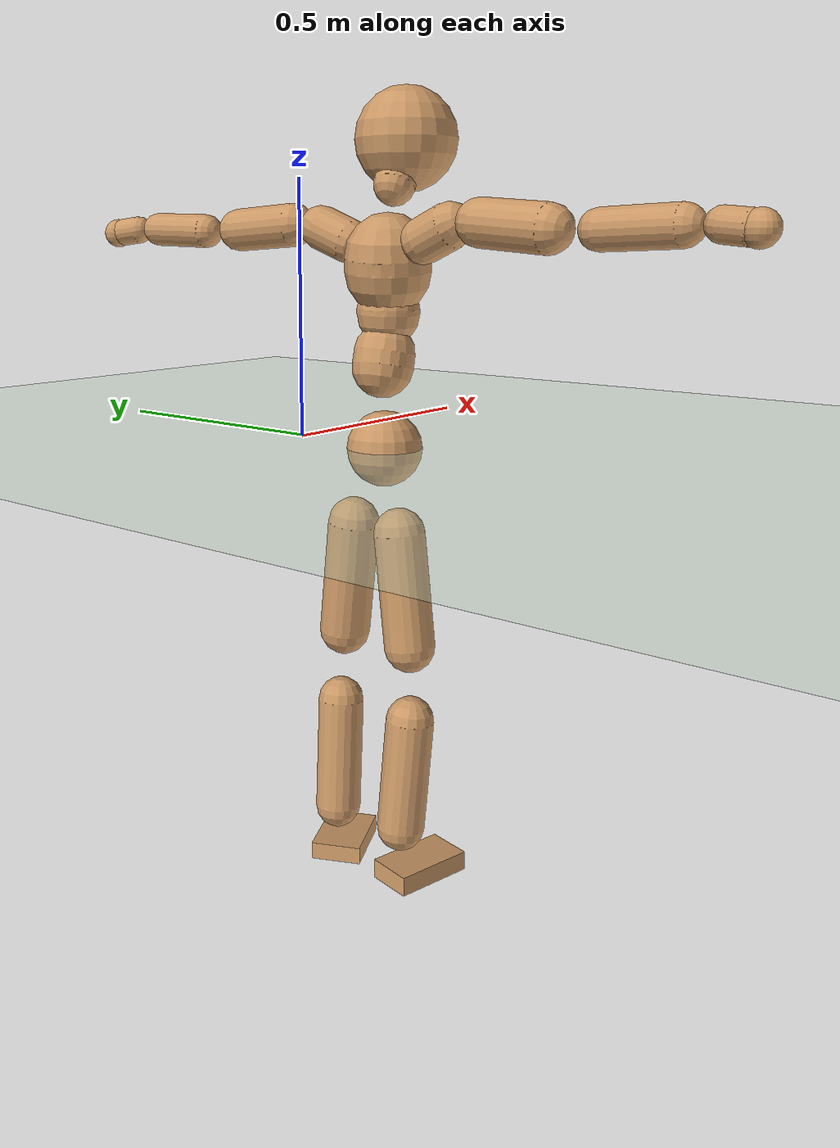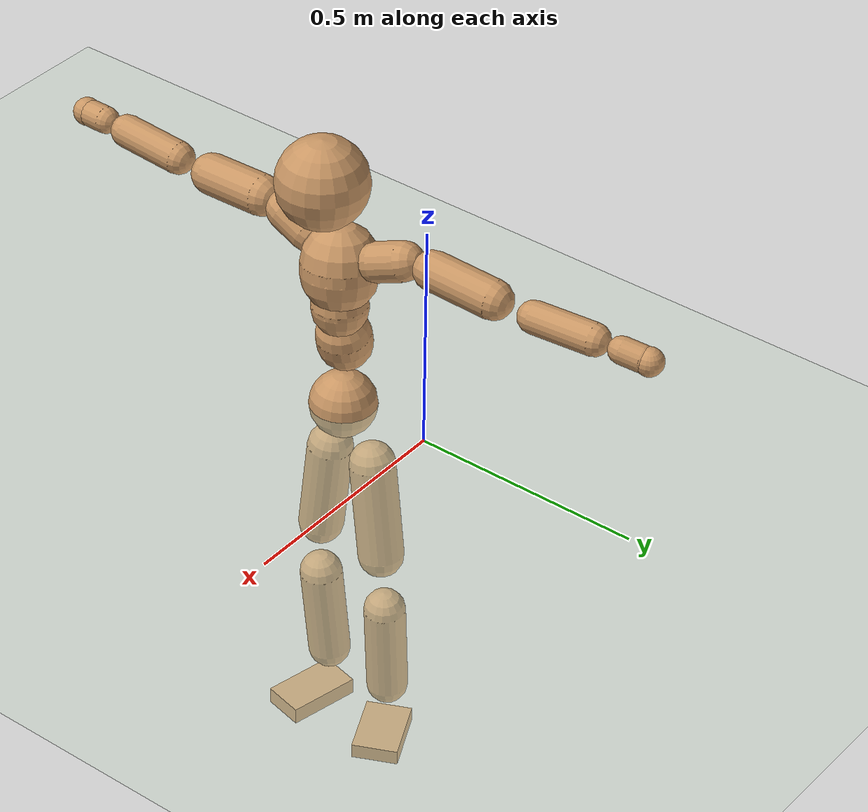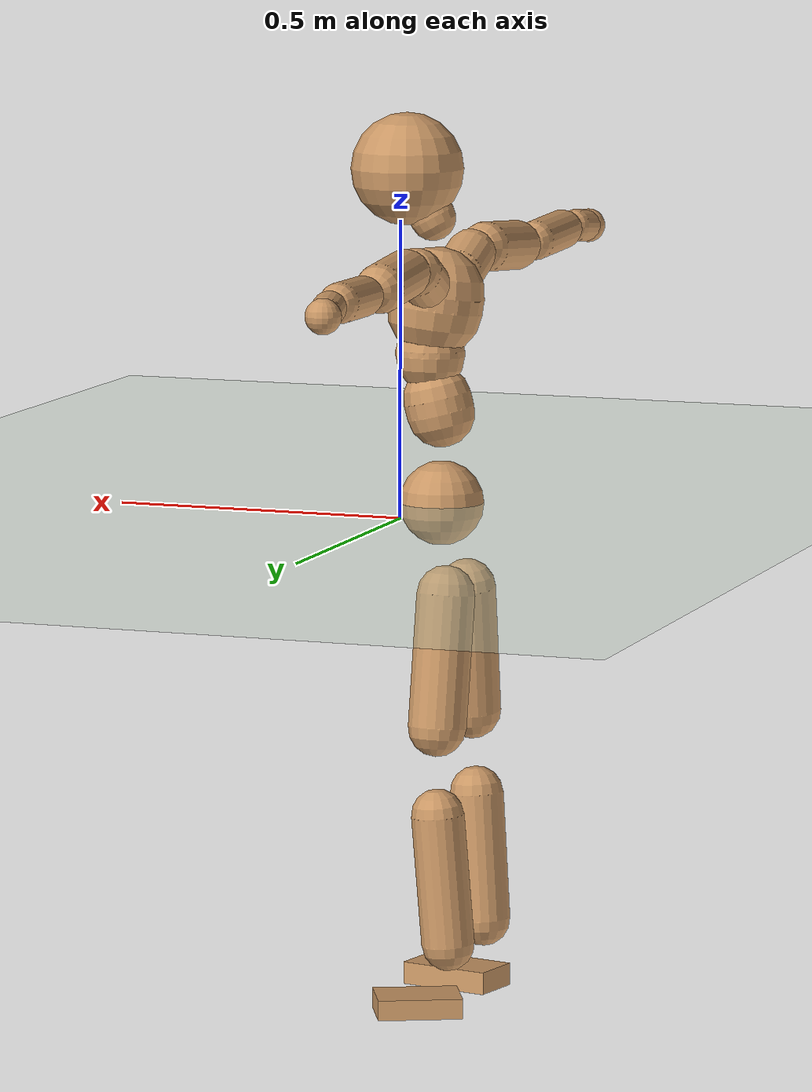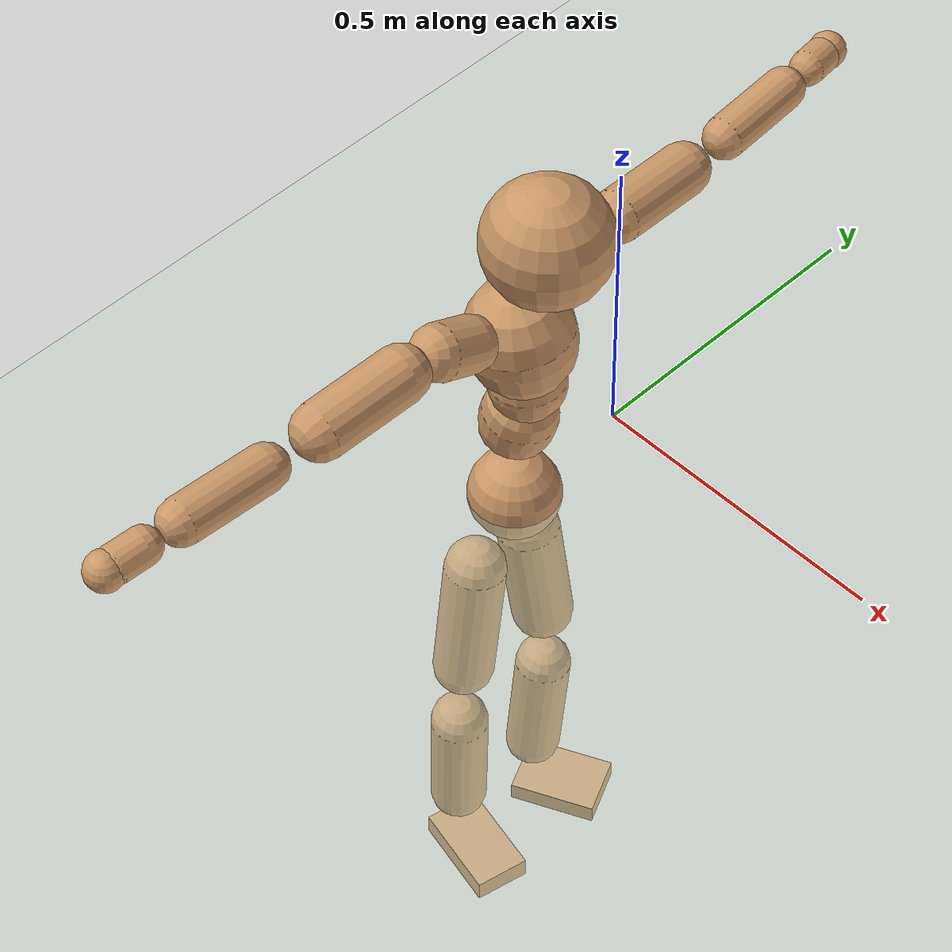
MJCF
<mujoco model="humanoid">
  <compiler coordinate="local" angle="radian"/>
  <default>
    <joint damping="0.0" armature="0.01" stiffness="0.0" limited="true"/>
    <geom conaffinity="1" condim="3" contype="7" margin="0.001" rgba="0.8 0.6 .4 1"/>
  </default>
  <asset>
    <texture type="skybox" builtin="gradient" rgb1=".4 .5 .6" rgb2="0 0 0" width="100" height="100"/>
    <texture builtin="flat" height="1278" mark="cross" markrgb="1 1 1" name="texgeom" random="0.01" rgb1="0.8 0.6 0.4" rgb2="0.8 0.6 0.4" type="cube" width="127"/>
    <texture builtin="checker" height="100" name="texplane" rgb1="0 0 0" rgb2="0.8 0.8 0.8" type="2d" width="100"/>
    <material name="MatPlane" reflectance="0.5" shininess="1" specular="1" texrepeat="60 60" texture="texplane"/>
    <material name="geom" texture="texgeom" texuniform="true"/>
  </asset>
  <worldbody>
    <light cutoff="100" diffuse="1 1 1" dir="-0 0 -1.3" directional="true" exponent="1" pos="0 0 1.3" specular=".1 .1 .1"/>
    <geom conaffinity="1" condim="3" name="floor" pos="0 0 0" rgba="0.8 0.9 0.8 1" size="100 100 .2" type="plane" material="MatPlane"/>
    <body name="Pelvis" pos="-0.0005 -0.2097 -0.003">
      <freejoint name="Pelvis"/>
      <geom type="sphere" contype="1" conaffinity="1" density="500" size="0.0722" pos="0.0000 0.0000 0.0000" name="Pelvis"/>
      <body name="L_Hip" pos="-0.0285 0.0455 -0.0728">
        <joint name="L_Hip_x" type="hinge" pos="0 0 0" axis="1 0 0" stiffness="800" damping="80" armature="0.02" range="-180.0000 180.0000"/>
        <joint name="L_Hip_y" type="hinge" pos="0 0 0" axis="0 1 0" stiffness="800" damping="80" armature="0.02" range="-180.0000 180.0000"/>
        <joint name="L_Hip_z" type="hinge" pos="0 0 0" axis="0 0 1" stiffness="800" damping="80" armature="0.02" range="-180.0000 180.0000"/>
        <geom type="capsule" contype="1" conaffinity="1" density="500" fromto="0.0018 0.0094 -0.0751 0.0070 0.0375 -0.3005" size="0.0497" name="L_Hip"/>
        <body name="L_Knee" pos="0.0088 0.0469 -0.3757">
          <joint name="L_Knee_x" type="hinge" pos="0 0 0" axis="1 0 0" stiffness="800" damping="80" armature="0.02" range="-180.0000 180.0000"/>
          <joint name="L_Knee_y" type="hinge" pos="0 0 0" axis="0 1 0" stiffness="800" damping="80" armature="0.02" range="-180.0000 180.0000"/>
          <joint name="L_Knee_z" type="hinge" pos="0 0 0" axis="0 0 1" stiffness="800" damping="80" armature="0.02" range="-180.0000 180.0000"/>
          <geom type="capsule" contype="1" conaffinity="1" density="500" fromto="-0.0058 -0.0018 -0.0748 -0.0232 -0.0070 -0.2991" size="0.0453" name="L_Knee"/>
          <body name="L_Ankle" pos="-0.029 -0.0088 -0.3738">
            <joint name="L_Ankle_x" type="hinge" pos="0 0 0" axis="1 0 0" stiffness="800" damping="80" armature="0.02" range="-180.0000 180.0000"/>
            <joint name="L_Ankle_y" type="hinge" pos="0 0 0" axis="0 1 0" stiffness="800" damping="80" armature="0.02" range="-180.0000 180.0000"/>
            <joint name="L_Ankle_z" type="hinge" pos="0 0 0" axis="0 0 1" stiffness="800" damping="80" armature="0.02" range="-180.0000 180.0000"/>
            <geom type="box" contype="1" conaffinity="1" density="500" pos="0.0526 0.0248 -0.0274" size="0.0725 0.0508 0.0173" quat="0.9758 0.0000 0.0000 0.2188" name="L_Ankle"/>
            <body name="L_Toe" pos="0.1052 0.0497 -0.0548">
              <joint name="L_Toe_x" type="hinge" pos="0 0 0" axis="1 0 0" stiffness="500" damping="50" armature="0.02" range="-180.0000 180.0000"/>
              <joint name="L_Toe_y" type="hinge" pos="0 0 0" axis="0 1 0" stiffness="500" damping="50" armature="0.02" range="-180.0000 180.0000"/>
              <joint name="L_Toe_z" type="hinge" pos="0 0 0" axis="0 0 1" stiffness="500" damping="50" armature="0.02" range="-180.0000 180.0000"/>
              <geom type="box" contype="1" conaffinity="1" density="500" pos="0.0000 0.0000 0.0304" size="0.001 0.0024 0.001" quat="0.9749 0.0000 0.0000 0.2227" name="L_Toe"/>
            </body>
          </body>
        </body>
      </body>
      <body name="R_Hip" pos="-0.0266 -0.048 -0.0799">
        <joint name="R_Hip_x" type="hinge" pos="0 0 0" axis="1 0 0" stiffness="800" damping="80" armature="0.02" range="-180.0000 180.0000"/>
        <joint name="R_Hip_y" type="hinge" pos="0 0 0" axis="0 1 0" stiffness="800" damping="80" armature="0.02" range="-180.0000 180.0000"/>
        <joint name="R_Hip_z" type="hinge" pos="0 0 0" axis="0 0 1" stiffness="800" damping="80" armature="0.02" range="-180.0000 180.0000"/>
        <geom type="capsule" contype="1" conaffinity="1" density="500" fromto="-0.0004 -0.0091 -0.0729 -0.0017 -0.0365 -0.2916" size="0.049" name="R_Hip"/>
        <body name="R_Knee" pos="-0.0021 -0.0457 -0.3645">
          <joint name="R_Knee_x" type="hinge" pos="0 0 0" axis="1 0 0" stiffness="800" damping="80" armature="0.02" range="-180.0000 180.0000"/>
          <joint name="R_Knee_y" type="hinge" pos="0 0 0" axis="0 1 0" stiffness="800" damping="80" armature="0.02" range="-180.0000 180.0000"/>
          <joint name="R_Knee_z" type="hinge" pos="0 0 0" axis="0 0 1" stiffness="800" damping="80" armature="0.02" range="-180.0000 180.0000"/>
          <geom type="capsule" contype="1" conaffinity="1" density="500" fromto="-0.0053 0.0029 -0.0734 -0.0212 0.0117 -0.2937" size="0.0465" name="R_Knee"/>
          <body name="R_Ankle" pos="-0.0265 0.0146 -0.3672">
            <joint name="R_Ankle_x" type="hinge" pos="0 0 0" axis="1 0 0" stiffness="800" damping="80" armature="0.02" range="-180.0000 180.0000"/>
            <joint name="R_Ankle_y" type="hinge" pos="0 0 0" axis="0 1 0" stiffness="800" damping="80" armature="0.02" range="-180.0000 180.0000"/>
            <joint name="R_Ankle_z" type="hinge" pos="0 0 0" axis="0 0 1" stiffness="800" damping="80" armature="0.02" range="-180.0000 180.0000"/>
            <geom type="box" contype="1" conaffinity="1" density="500" pos="0.0569 -0.0125 -0.0295" size="0.0805 0.0455 0.0193" quat="0.9941 0.0000 0.0000 -0.1081" name="R_Ankle"/>
            <body name="R_Toe" pos="0.1138 -0.0251 -0.059">
              <joint name="R_Toe_x" type="hinge" pos="0 0 0" axis="1 0 0" stiffness="500" damping="50" armature="0.02" range="-180.0000 180.0000"/>
              <joint name="R_Toe_y" type="hinge" pos="0 0 0" axis="0 1 0" stiffness="500" damping="50" armature="0.02" range="-180.0000 180.0000"/>
              <joint name="R_Toe_z" type="hinge" pos="0 0 0" axis="0 0 1" stiffness="500" damping="50" armature="0.02" range="-180.0000 180.0000"/>
              <geom type="box" contype="1" conaffinity="1" density="500" pos="0.0000 0.0000 0.0329" size="0.0008 0.0022 0.0011" quat="0.9952 0.0000 0.0000 -0.0981" name="R_Toe"/>
            </body>
          </body>
        </body>
      </body>
      <body name="Torso" pos="-0.0126 0.0038 0.1031">
        <joint name="Torso_x" type="hinge" pos="0 0 0" axis="1 0 0" stiffness="1000" damping="100" armature="0.02" range="-180.0000 180.0000"/>
        <joint name="Torso_y" type="hinge" pos="0 0 0" axis="0 1 0" stiffness="1000" damping="100" armature="0.02" range="-180.0000 180.0000"/>
        <joint name="Torso_z" type="hinge" pos="0 0 0" axis="0 0 1" stiffness="1000" damping="100" armature="0.02" range="-180.0000 180.0000"/>
        <geom type="capsule" contype="1" conaffinity="1" density="500" fromto="0.0190 0.0023 0.0768 0.0126 0.0015 0.0512" size="0.0581" name="Torso"/>
        <body name="Spine" pos="0.0316 0.0039 0.128">
          <joint name="Spine_x" type="hinge" pos="0 0 0" axis="1 0 0" stiffness="1000" damping="100" armature="0.02" range="-180.0000 180.0000"/>
          <joint name="Spine_y" type="hinge" pos="0 0 0" axis="0 1 0" stiffness="1000" damping="100" armature="0.02" range="-180.0000 180.0000"/>
          <joint name="Spine_z" type="hinge" pos="0 0 0" axis="0 0 1" stiffness="1000" damping="100" armature="0.02" range="-180.0000 180.0000"/>
          <geom type="capsule" contype="1" conaffinity="1" density="500" fromto="-0.0004 -0.0009 0.0303 -0.0003 -0.0006 0.0202" size="0.0594" name="Spine"/>
          <body name="Chest" pos="-0.0007 -0.0016 0.0506">
            <joint name="Chest_x" type="hinge" pos="0 0 0" axis="1 0 0" stiffness="1000" damping="100" armature="0.02" range="-180.0000 180.0000"/>
            <joint name="Chest_y" type="hinge" pos="0 0 0" axis="0 1 0" stiffness="1000" damping="100" armature="0.02" range="-180.0000 180.0000"/>
            <joint name="Chest_z" type="hinge" pos="0 0 0" axis="0 0 1" stiffness="1000" damping="100" armature="0.02" range="-180.0000 180.0000"/>
            <geom type="capsule" contype="1" conaffinity="1" density="500" fromto="-0.0089 -0.0057 0.0746 -0.0059 -0.0038 0.0497" size="0.0815" name="Chest"/>
            <body name="Neck" pos="-0.0106 -0.0141 0.183">
              <joint name="Neck_x" type="hinge" pos="0 0 0" axis="1 0 0" stiffness="500" damping="50" armature="0.02" range="-180.0000 180.0000"/>
              <joint name="Neck_y" type="hinge" pos="0 0 0" axis="0 1 0" stiffness="500" damping="50" armature="0.02" range="-180.0000 180.0000"/>
              <joint name="Neck_z" type="hinge" pos="0 0 0" axis="0 0 1" stiffness="500" damping="50" armature="0.02" range="-180.0000 180.0000"/>
              <geom type="capsule" contype="1" conaffinity="1" density="500" fromto="0.0110 0.0017 0.0207 0.0439 0.0070 0.0827" size="0.0388" name="Neck"/>
              <body name="Head" pos="0.0549 0.0087 0.1033">
                <joint name="Head_x" type="hinge" pos="0 0 0" axis="1 0 0" stiffness="500" damping="50" armature="0.02" range="-180.0000 180.0000"/>
                <joint name="Head_y" type="hinge" pos="0 0 0" axis="0 1 0" stiffness="500" damping="50" armature="0.02" range="-180.0000 180.0000"/>
                <joint name="Head_z" type="hinge" pos="0 0 0" axis="0 0 1" stiffness="500" damping="50" armature="0.02" range="-180.0000 180.0000"/>
                <geom type="sphere" contype="1" conaffinity="1" density="500" size="0.0959" pos="0.0000 0.0000 0.0000" name="Head"/>
              </body>
            </body>
            <body name="L_Thorax" pos="-0.0157 0.0594 0.0945">
              <joint name="L_Thorax_x" type="hinge" pos="0 0 0" axis="1 0 0" stiffness="500" damping="50" armature="0.02" range="-180.0000 180.0000"/>
              <joint name="L_Thorax_y" type="hinge" pos="0 0 0" axis="0 1 0" stiffness="500" damping="50" armature="0.02" range="-180.0000 180.0000"/>
              <joint name="L_Thorax_z" type="hinge" pos="0 0 0" axis="0 0 1" stiffness="500" damping="50" armature="0.02" range="-180.0000 180.0000"/>
              <geom type="capsule" contype="1" conaffinity="1" density="500" fromto="-0.0023 0.0207 0.0084 -0.0092 0.0827 0.0337" size="0.0415" name="L_Thorax"/>
              <body name="L_Shoulder" pos="-0.0115 0.1033 0.0421">
                <joint name="L_Shoulder_x" type="hinge" pos="0 0 0" axis="1 0 0" stiffness="500" damping="50" armature="0.02" range="-720.0000 720.0000"/>
                <joint name="L_Shoulder_y" type="hinge" pos="0 0 0" axis="0 1 0" stiffness="500" damping="50" armature="0.02" range="-720.0000 720.0000"/>
                <joint name="L_Shoulder_z" type="hinge" pos="0 0 0" axis="0 0 1" stiffness="500" damping="50" armature="0.02" range="-720.0000 720.0000"/>
                <geom type="capsule" contype="1" conaffinity="1" density="500" fromto="-0.0017 0.0474 -0.0031 -0.0070 0.1897 -0.0123" size="0.0412" name="L_Shoulder"/>
                <body name="L_Elbow" pos="-0.0087 0.2372 -0.0154">
                  <joint name="L_Elbow_x" type="hinge" pos="0 0 0" axis="1 0 0" stiffness="500" damping="50" armature="0.02" range="-720.0000 720.0000"/>
                  <joint name="L_Elbow_y" type="hinge" pos="0 0 0" axis="0 1 0" stiffness="500" damping="50" armature="0.02" range="-720.0000 720.0000"/>
                  <joint name="L_Elbow_z" type="hinge" pos="0 0 0" axis="0 0 1" stiffness="500" damping="50" armature="0.02" range="-720.0000 720.0000"/>
                  <geom type="capsule" contype="1" conaffinity="1" density="500" fromto="-0.0026 0.0452 0.0013 -0.0103 0.1806 0.0052" size="0.0334" name="L_Elbow"/>
                  <body name="L_Wrist" pos="-0.0129 0.2258 0.0064">
                    <joint name="L_Wrist_x" type="hinge" pos="0 0 0" axis="1 0 0" stiffness="300" damping="30" armature="0.02" range="-180.0000 180.0000"/>
                    <joint name="L_Wrist_y" type="hinge" pos="0 0 0" axis="0 1 0" stiffness="300" damping="30" armature="0.02" range="-180.0000 180.0000"/>
                    <joint name="L_Wrist_z" type="hinge" pos="0 0 0" axis="0 0 1" stiffness="300" damping="30" armature="0.02" range="-180.0000 180.0000"/>
                    <geom type="capsule" contype="1" conaffinity="1" density="500" fromto="-0.0026 0.0142 -0.0018 -0.0103 0.0568 -0.0070" size="0.0278" name="L_Wrist"/>
                    <body name="L_Hand" pos="-0.0128 0.071 -0.0088">
                      <joint name="L_Hand_x" type="hinge" pos="0 0 0" axis="1 0 0" stiffness="300" damping="30" armature="0.02" range="-180.0000 180.0000"/>
                      <joint name="L_Hand_y" type="hinge" pos="0 0 0" axis="0 1 0" stiffness="300" damping="30" armature="0.02" range="-180.0000 180.0000"/>
                      <joint name="L_Hand_z" type="hinge" pos="0 0 0" axis="0 0 1" stiffness="300" damping="30" armature="0.02" range="-180.0000 180.0000"/>
                      <geom type="sphere" contype="1" conaffinity="1" density="500" size="0.0293" pos="0.0000 0.0000 0.0000" name="L_Hand"/>
                    </body>
                  </body>
                </body>
              </body>
            </body>
            <body name="R_Thorax" pos="-0.0182 -0.074 0.0956">
              <joint name="R_Thorax_x" type="hinge" pos="0 0 0" axis="1 0 0" stiffness="500" damping="50" armature="0.02" range="-180.0000 180.0000"/>
              <joint name="R_Thorax_y" type="hinge" pos="0 0 0" axis="0 1 0" stiffness="500" damping="50" armature="0.02" range="-180.0000 180.0000"/>
              <joint name="R_Thorax_z" type="hinge" pos="0 0 0" axis="0 0 1" stiffness="500" damping="50" armature="0.02" range="-180.0000 180.0000"/>
              <geom type="capsule" contype="1" conaffinity="1" density="500" fromto="-0.0005 -0.0193 0.0085 -0.0021 -0.0772 0.0342" size="0.0426" name="R_Thorax"/>
              <body name="R_Shoulder" pos="-0.0026 -0.0965 0.0427">
                <joint name="R_Shoulder_x" type="hinge" pos="0 0 0" axis="1 0 0" stiffness="500" damping="50" armature="0.02" range="-720.0000 720.0000"/>
                <joint name="R_Shoulder_y" type="hinge" pos="0 0 0" axis="0 1 0" stiffness="500" damping="50" armature="0.02" range="-720.0000 720.0000"/>
                <joint name="R_Shoulder_z" type="hinge" pos="0 0 0" axis="0 0 1" stiffness="500" damping="50" armature="0.02" range="-720.0000 720.0000"/>
                <geom type="capsule" contype="1" conaffinity="1" density="500" fromto="-0.0030 -0.0468 -0.0036 -0.0120 -0.1872 -0.0145" size="0.0434" name="R_Shoulder"/>
                <body name="R_Elbow" pos="-0.015 -0.234 -0.0181">
                  <joint name="R_Elbow_x" type="hinge" pos="0 0 0" axis="1 0 0" stiffness="500" damping="50" armature="0.02" range="-720.0000 720.0000"/>
                  <joint name="R_Elbow_y" type="hinge" pos="0 0 0" axis="0 1 0" stiffness="500" damping="50" armature="0.02" range="-720.0000 720.0000"/>
                  <joint name="R_Elbow_z" type="hinge" pos="0 0 0" axis="0 0 1" stiffness="500" damping="50" armature="0.02" range="-720.0000 720.0000"/>
                  <geom type="capsule" contype="1" conaffinity="1" density="500" fromto="-0.0015 -0.0476 0.0020 -0.0059 -0.1904 0.0078" size="0.035" name="R_Elbow"/>
                  <body name="R_Wrist" pos="-0.0073 -0.238 0.0098">
                    <joint name="R_Wrist_x" type="hinge" pos="0 0 0" axis="1 0 0" stiffness="300" damping="30" armature="0.02" range="-180.0000 180.0000"/>
                    <joint name="R_Wrist_y" type="hinge" pos="0 0 0" axis="0 1 0" stiffness="300" damping="30" armature="0.02" range="-180.0000 180.0000"/>
                    <joint name="R_Wrist_z" type="hinge" pos="0 0 0" axis="0 0 1" stiffness="300" damping="30" armature="0.02" range="-180.0000 180.0000"/>
                    <geom type="capsule" contype="1" conaffinity="1" density="500" fromto="-0.0017 -0.0147 -0.0014 -0.0069 -0.0589 -0.0055" size="0.0287" name="R_Wrist"/>
                    <body name="R_Hand" pos="-0.0086 -0.0736 -0.0068">
                      <joint name="R_Hand_x" type="hinge" pos="0 0 0" axis="1 0 0" stiffness="300" damping="30" armature="0.02" range="-180.0000 180.0000"/>
                      <joint name="R_Hand_y" type="hinge" pos="0 0 0" axis="0 1 0" stiffness="300" damping="30" armature="0.02" range="-180.0000 180.0000"/>
                      <joint name="R_Hand_z" type="hinge" pos="0 0 0" axis="0 0 1" stiffness="300" damping="30" armature="0.02" range="-180.0000 180.0000"/>
                      <geom type="sphere" contype="1" conaffinity="1" density="500" size="0.0300" pos="0.0000 0.0000 0.0000" name="R_Hand"/>
                    </body>
                  </body>
                </body>
              </body>
            </body>
          </body>
        </body>
      </body>
    </body>
  </worldbody>
  <actuator>
    <motor name="L_Hip_x" joint="L_Hip_x" gear="500"/>
    <motor name="L_Hip_y" joint="L_Hip_y" gear="500"/>
    <motor name="L_Hip_z" joint="L_Hip_z" gear="500"/>
    <motor name="L_Knee_x" joint="L_Knee_x" gear="500"/>
    <motor name="L_Knee_y" joint="L_Knee_y" gear="500"/>
    <motor name="L_Knee_z" joint="L_Knee_z" gear="500"/>
    <motor name="L_Ankle_x" joint="L_Ankle_x" gear="500"/>
    <motor name="L_Ankle_y" joint="L_Ankle_y" gear="500"/>
    <motor name="L_Ankle_z" joint="L_Ankle_z" gear="500"/>
    <motor name="L_Toe_x" joint="L_Toe_x" gear="500"/>
    <motor name="L_Toe_y" joint="L_Toe_y" gear="500"/>
    <motor name="L_Toe_z" joint="L_Toe_z" gear="500"/>
    <motor name="R_Hip_x" joint="R_Hip_x" gear="500"/>
    <motor name="R_Hip_y" joint="R_Hip_y" gear="500"/>
    <motor name="R_Hip_z" joint="R_Hip_z" gear="500"/>
    <motor name="R_Knee_x" joint="R_Knee_x" gear="500"/>
    <motor name="R_Knee_y" joint="R_Knee_y" gear="500"/>
    <motor name="R_Knee_z" joint="R_Knee_z" gear="500"/>
    <motor name="R_Ankle_x" joint="R_Ankle_x" gear="500"/>
    <motor name="R_Ankle_y" joint="R_Ankle_y" gear="500"/>
    <motor name="R_Ankle_z" joint="R_Ankle_z" gear="500"/>
    <motor name="R_Toe_x" joint="R_Toe_x" gear="500"/>
    <motor name="R_Toe_y" joint="R_Toe_y" gear="500"/>
    <motor name="R_Toe_z" joint="R_Toe_z" gear="500"/>
    <motor name="Torso_x" joint="Torso_x" gear="500"/>
    <motor name="Torso_y" joint="Torso_y" gear="500"/>
    <motor name="Torso_z" joint="Torso_z" gear="500"/>
    <motor name="Spine_x" joint="Spine_x" gear="500"/>
    <motor name="Spine_y" joint="Spine_y" gear="500"/>
    <motor name="Spine_z" joint="Spine_z" gear="500"/>
    <motor name="Chest_x" joint="Chest_x" gear="500"/>
    <motor name="Chest_y" joint="Chest_y" gear="500"/>
    <motor name="Chest_z" joint="Chest_z" gear="500"/>
    <motor name="Neck_x" joint="Neck_x" gear="500"/>
    <motor name="Neck_y" joint="Neck_y" gear="500"/>
    <motor name="Neck_z" joint="Neck_z" gear="500"/>
    <motor name="Head_x" joint="Head_x" gear="500"/>
    <motor name="Head_y" joint="Head_y" gear="500"/>
    <motor name="Head_z" joint="Head_z" gear="500"/>
    <motor name="L_Thorax_x" joint="L_Thorax_x" gear="500"/>
    <motor name="L_Thorax_y" joint="L_Thorax_y" gear="500"/>
    <motor name="L_Thorax_z" joint="L_Thorax_z" gear="500"/>
    <motor name="L_Shoulder_x" joint="L_Shoulder_x" gear="500"/>
    <motor name="L_Shoulder_y" joint="L_Shoulder_y" gear="500"/>
    <motor name="L_Shoulder_z" joint="L_Shoulder_z" gear="500"/>
    <motor name="L_Elbow_x" joint="L_Elbow_x" gear="500"/>
    <motor name="L_Elbow_y" joint="L_Elbow_y" gear="500"/>
    <motor name="L_Elbow_z" joint="L_Elbow_z" gear="500"/>
    <motor name="L_Wrist_x" joint="L_Wrist_x" gear="500"/>
    <motor name="L_Wrist_y" joint="L_Wrist_y" gear="500"/>
    <motor name="L_Wrist_z" joint="L_Wrist_z" gear="500"/>
    <motor name="L_Hand_x" joint="L_Hand_x" gear="500"/>
    <motor name="L_Hand_y" joint="L_Hand_y" gear="500"/>
    <motor name="L_Hand_z" joint="L_Hand_z" gear="500"/>
    <motor name="R_Thorax_x" joint="R_Thorax_x" gear="500"/>
    <motor name="R_Thorax_y" joint="R_Thorax_y" gear="500"/>
    <motor name="R_Thorax_z" joint="R_Thorax_z" gear="500"/>
    <motor name="R_Shoulder_x" joint="R_Shoulder_x" gear="500"/>
    <motor name="R_Shoulder_y" joint="R_Shoulder_y" gear="500"/>
    <motor name="R_Shoulder_z" joint="R_Shoulder_z" gear="500"/>
    <motor name="R_Elbow_x" joint="R_Elbow_x" gear="500"/>
    <motor name="R_Elbow_y" joint="R_Elbow_y" gear="500"/>
    <motor name="R_Elbow_z" joint="R_Elbow_z" gear="500"/>
    <motor name="R_Wrist_x" joint="R_Wrist_x" gear="500"/>
    <motor name="R_Wrist_y" joint="R_Wrist_y" gear="500"/>
    <motor name="R_Wrist_z" joint="R_Wrist_z" gear="500"/>
    <motor name="R_Hand_x" joint="R_Hand_x" gear="500"/>
    <motor name="R_Hand_y" joint="R_Hand_y" gear="500"/>
    <motor name="R_Hand_z" joint="R_Hand_z" gear="500"/>
  </actuator>
  <contact>
    <exclude body1="Torso" body2="Chest"/>
    <exclude body1="Head" body2="Chest"/>
    <exclude body1="R_Knee" body2="R_Toe"/>
    <exclude body1="R_Knee" body2="L_Ankle"/>
    <exclude body1="R_Knee" body2="L_Toe"/>
    <exclude body1="L_Knee" body2="L_Toe"/>
    <exclude body1="L_Knee" body2="R_Ankle"/>
    <exclude body1="L_Knee" body2="R_Toe"/>
    <exclude body1="L_Shoulder" body2="Chest"/>
    <exclude body1="R_Shoulder" body2="Chest"/>
  </contact>
  <sensor/>
  <size njmax="700" nconmax="700"/>
</mujoco>
